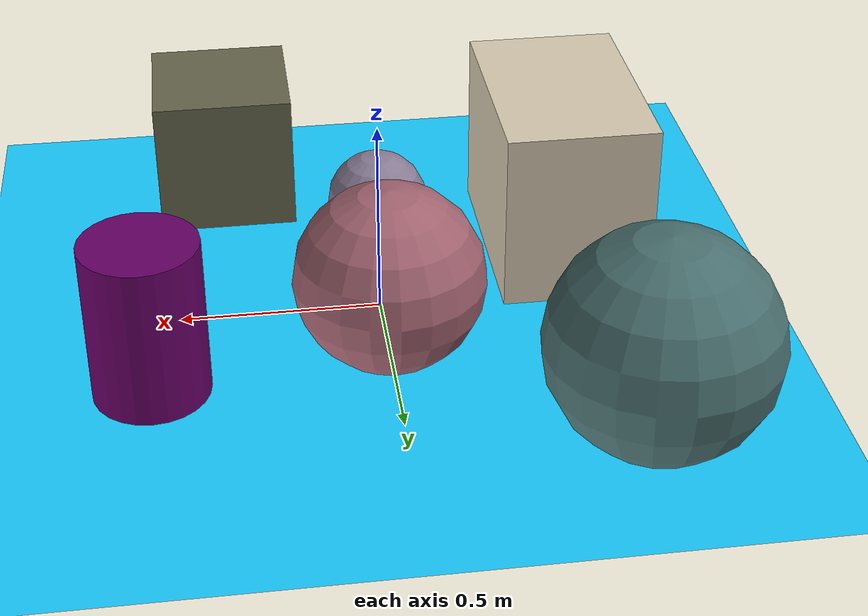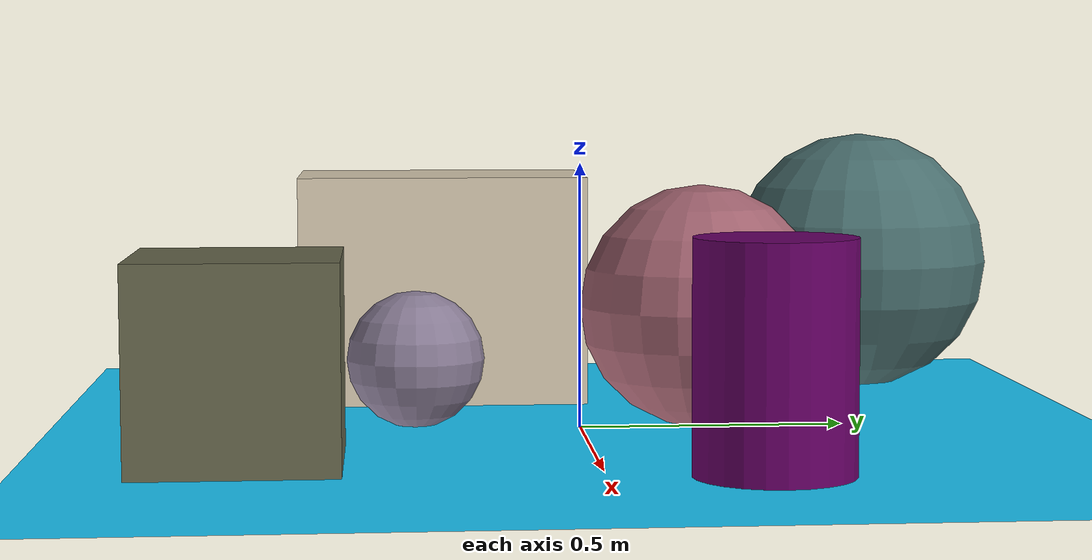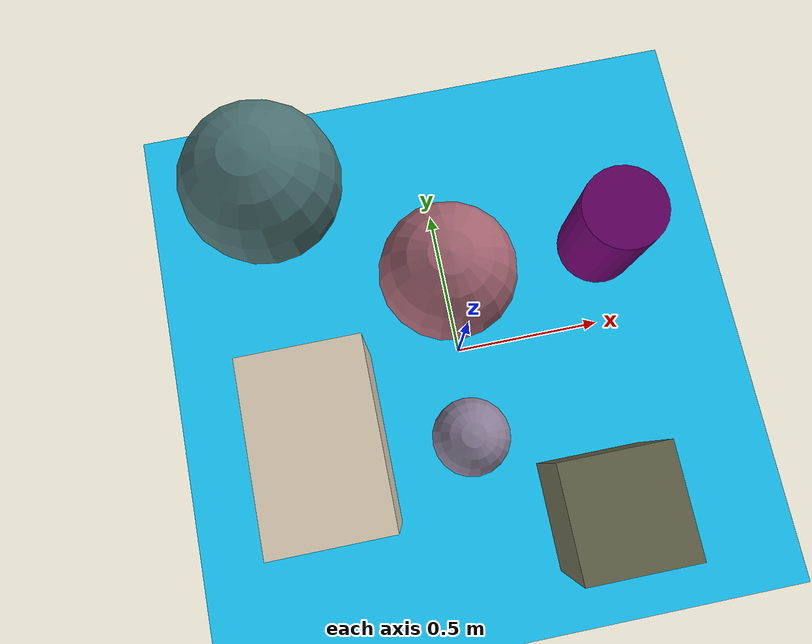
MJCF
<mujoco>
   <asset>
<texture type="skybox" builtin="gradient" rgb1="0.7 0.7 0.5" rgb2="1.0 0.8 0.7" width="256" height="256"/>
<texture name="gradient_0" builtin="gradient" rgb1="0.4 0.3 0.9" rgb2="0.9 0.5 0.0" width="200" height="200"/>
<texture name="gradient_1" builtin="gradient" rgb1="0.2 0.7 0.3" rgb2="0.4 0.2 0.6" width="200" height="200"/>
<texture name="flat_2" builtin="flat" rgb1="0.4 0.0 0.4" rgb2="0.4 0.0 0.4"  width="200" height="200"/>
<texture name="checker_3" builtin="checker" type="2d" rgb1="0.1 0.5 0.4" rgb2="1.0 0.5 0.8" width="200" height="200"/>
<texture name="gradient_4" builtin="gradient" rgb1="0.9 1.0 0.8" rgb2="0.8 0.6 0.6" width="200" height="200"/>
<texture name="flat_5" builtin="flat" rgb1="0.4 0.4 0.3" rgb2="0.4 0.4 0.3"  width="200" height="200"/><material name="gradient_0_mat" reflectance="0" texture="gradient_0" texuniform="true"/>
<material name="gradient_1_mat" reflectance="0" texture="gradient_1" texuniform="true"/>
<material name="flat_2_mat" reflectance="0" texture="flat_2" texuniform="true"/>
<material name="checker_3_mat" reflectance="0" texrepeat="8 8" texture="checker_3" texuniform="false" />
<material name="gradient_4_mat" reflectance="0" texture="gradient_4" texuniform="true"/>
<material name="flat_5_mat" reflectance="0" texture="flat_5" texuniform="true"/>
   </asset>

   <worldbody>
      <light diffuse=".9 .9 .9" pos="0 0 3" dir="0 0 -1"/>
     <geom type="plane" size="1 1 0.1" rgba="0.1 0.8 1.0 1"/>
<geom type="sphere" pos="0.0 0.23 0.23" size="0.23 0.23 0.23" material="gradient_0_mat" />
<geom type="sphere" pos="-0.55 0.64 0.27" size="0.27 0.27 0.27" material="gradient_1_mat" />
<geom type="cylinder" pos="0.57 0.28 0.2" size="0.14 0.2 0.2" material="flat_2_mat" />
<geom type="sphere" pos="-0.03 -0.31 0.13" size="0.13 0.13 0.13" material="checker_3_mat" />
<geom type="box" pos="-0.5 -0.25 0.23" size="0.19 0.29 0.23" material="gradient_4_mat" />
<geom type="box" pos="0.36 -0.62 0.18" size="0.18 0.18 0.18" material="flat_5_mat" /><camera euler="60 0 180" fovy="60" name="camera_a" pos="0 -1.5 1"></camera>   </worldbody>
</mujoco>
